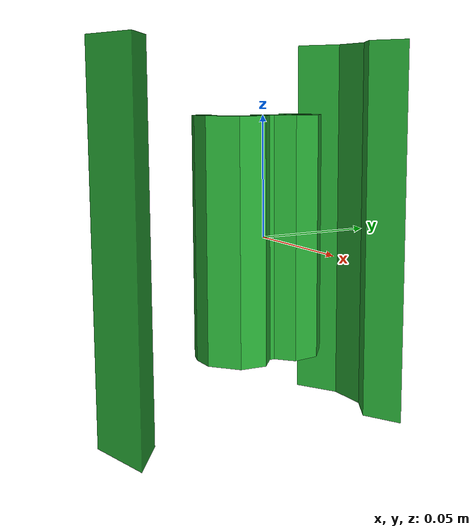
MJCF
<?xml version="1.0" ?>
<mujoco model="peg3">
    <asset>
        <mesh file="peg/0.stl" name="mesh_0"/>
        <mesh file="peg/1.stl" name="mesh_1"/>
        <mesh file="peg/2.stl" name="mesh_2"/>
        <mesh file="peg/3.stl" name="mesh_3"/>
        <mesh file="peg/4.stl" name="mesh_4"/>
        <mesh file="peg/5.stl" name="mesh_5"/>
        <mesh file="peg/6.stl" name="mesh_6"/>
        <mesh file="peg/7.stl" name="mesh_7"/>
        <mesh file="peg/8.stl" name="mesh_8"/>
        <mesh file="peg/9.stl" name="mesh_9"/>
        <mesh file="peg/10.stl" name="mesh_10"/>
        <mesh file="peg/11.stl" name="mesh_11"/>
        <mesh file="peg/12.stl" name="mesh_12"/>
        <mesh file="peg/13.stl" name="mesh_13"/>
        <mesh file="peg/14.stl" name="mesh_14"/>
        <texture file="../texture/green-wood.png" name="green-wood"/>
        <material name="greenwood_mat" texture="green-wood" texrepeat="1 1" specular="0.4" shininess="0.1"/>
    </asset>
    <worldbody>
        <body>
            <body name="object">
                <geom mesh="mesh_0" type="mesh" group="0" material="greenwood_mat"/>
                <geom mesh="mesh_1" type="mesh" group="0" material="greenwood_mat"/>
                <geom mesh="mesh_2" type="mesh" group="0" material="greenwood_mat"/>
                <geom mesh="mesh_3" type="mesh" group="0" material="greenwood_mat"/>
                <geom mesh="mesh_4" type="mesh" group="0" material="greenwood_mat"/>
                <geom mesh="mesh_5" type="mesh" group="0" material="greenwood_mat"/>
                <geom mesh="mesh_6" type="mesh" group="0" material="greenwood_mat"/>
                <geom mesh="mesh_7" type="mesh" group="0" material="greenwood_mat"/>
                <geom mesh="mesh_8" type="mesh" group="0" material="greenwood_mat"/>
                <geom mesh="mesh_9" type="mesh" group="0" material="greenwood_mat"/>
                <geom mesh="mesh_10" type="mesh" group="0" material="greenwood_mat"/>
                <geom mesh="mesh_11" type="mesh" group="0" material="greenwood_mat"/>
                <geom mesh="mesh_12" type="mesh" group="0" material="greenwood_mat"/>
                <geom mesh="mesh_13" type="mesh" group="0" material="greenwood_mat"/>
                <geom mesh="mesh_14" type="mesh" group="0" material="greenwood_mat"/>
            </body>
        </body>
    </worldbody>
</mujoco>
